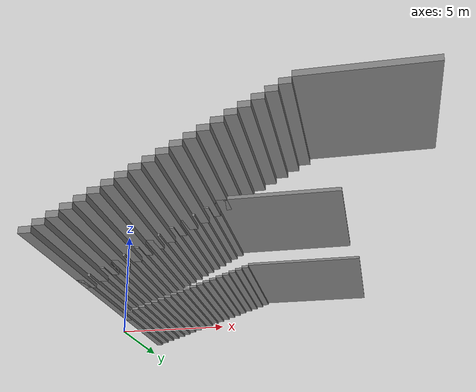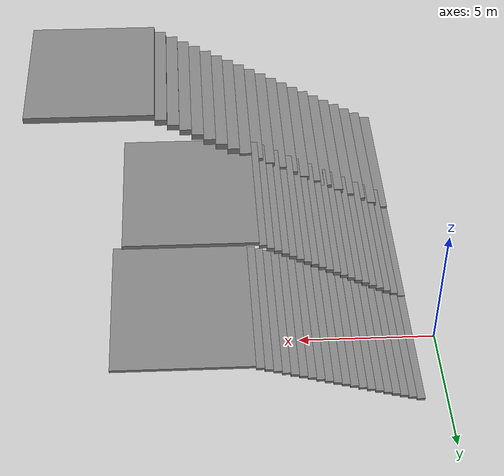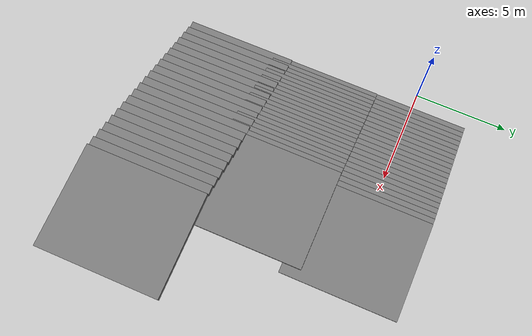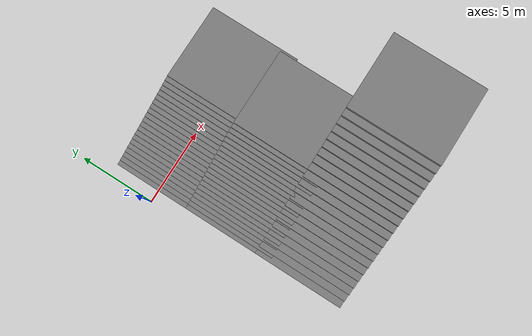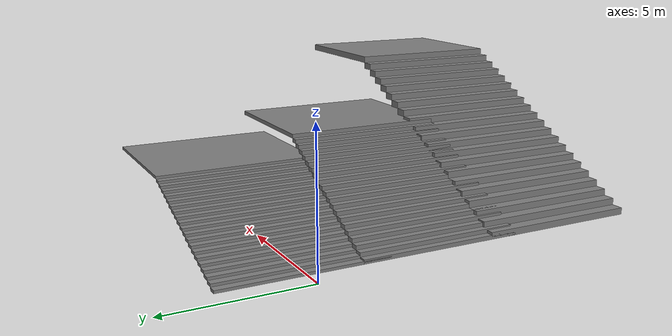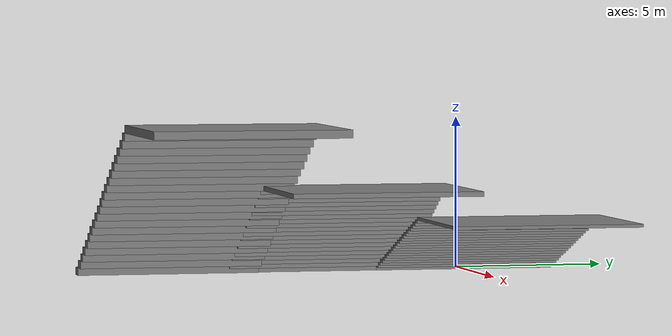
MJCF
<?xml version="1.0" encoding="UTF-8" ?>
<mujoco model="stair_terrain">
    <option gravity="0 0 -9.81" />

    <worldbody>

        <!-- stair 每级0.10m高, 0.30m深 -->
        <body name="staircase" pos="0.8 0 0">
            <geom name="s1_stair1" type="box" pos="0.15 0 0.05" size="0.15 3.0 0.05" rgba="0.5 0.5 0.5 1"/>
            <geom name="s1_stair2" type="box" pos="0.45 0 0.15" size="0.15 3.0 0.05" rgba="0.5 0.5 0.5 1"/>
            <geom name="s1_stair3" type="box" pos="0.75 0 0.25" size="0.15 3.0 0.05" rgba="0.5 0.5 0.5 1"/>
            <geom name="s1_stair4" type="box" pos="1.05 0 0.35" size="0.15 3.0 0.05" rgba="0.5 0.5 0.5 1"/>
            <geom name="s1_stair5" type="box" pos="1.35 0 0.45" size="0.15 3.0 0.05" rgba="0.5 0.5 0.5 1"/>
            <geom name="s1_stair6" type="box" pos="1.65 0 0.55" size="0.15 3.0 0.05" rgba="0.5 0.5 0.5 1"/>
            <geom name="s1_stair7" type="box" pos="1.95 0 0.65" size="0.15 3.0 0.05" rgba="0.5 0.5 0.5 1"/>
            <geom name="s1_stair8" type="box" pos="2.25 0 0.75" size="0.15 3.0 0.05" rgba="0.5 0.5 0.5 1"/>
            <geom name="s1_stair9" type="box" pos="2.55 0 0.85" size="0.15 3.0 0.05" rgba="0.5 0.5 0.5 1"/>
            <geom name="s1_stair10" type="box" pos="2.85 0 0.95" size="0.15 3.0 0.05" rgba="0.5 0.5 0.5 1"/>
            <geom name="s1_stair11" type="box" pos="3.15 0 1.05" size="0.15 3.0 0.05" rgba="0.5 0.5 0.5 1"/>
            <geom name="s1_stair12" type="box" pos="3.45 0 1.15" size="0.15 3.0 0.05" rgba="0.5 0.5 0.5 1"/>
            <geom name="s1_stair13" type="box" pos="3.75 0 1.25" size="0.15 3.0 0.05" rgba="0.5 0.5 0.5 1"/>
            <geom name="s1_stair14" type="box" pos="4.05 0 1.35" size="0.15 3.0 0.05" rgba="0.5 0.5 0.5 1"/>
            <geom name="s1_stair15" type="box" pos="4.35 0 1.45" size="0.15 3.0 0.05" rgba="0.5 0.5 0.5 1"/>
            <geom name="s1_stair16" type="box" pos="4.65 0 1.55" size="0.15 3.0 0.05" rgba="0.5 0.5 0.5 1"/>
            <geom name="s1_stair17" type="box" pos="4.95 0 1.65" size="0.15 3.0 0.05" rgba="0.5 0.5 0.5 1"/>
            <geom name="s1_stair18" type="box" pos="5.25 0 1.75" size="0.15 3.0 0.05" rgba="0.5 0.5 0.5 1"/>
            <geom name="s1_stair19" type="box" pos="5.55 0 1.85" size="0.15 3.0 0.05" rgba="0.5 0.5 0.5 1"/>
            <geom name="s1_stair20" type="box" pos="5.85 0 1.95" size="0.15 3.0 0.05" rgba="0.5 0.5 0.5 1"/>
            <geom name="s1_platform" type="box" pos="8.50 0 2.05" size="2.5 3.0 0.05" rgba="0.5 0.5 0.5 1"/>
        </body>

        <!-- stair 每级0.15m高, 0.28m深 -->
        <body name="staircase2" pos="0.8 -5.0 0">
            <geom name="s2_stair1" type="box" pos="0.14 0 0.075" size="0.14 3.0 0.075" rgba="0.5 0.5 0.5 1"/>
            <geom name="s2_stair2" type="box" pos="0.42 0 0.225" size="0.14 3.0 0.075" rgba="0.5 0.5 0.5 1"/>
            <geom name="s2_stair3" type="box" pos="0.70 0 0.375" size="0.14 3.0 0.075" rgba="0.5 0.5 0.5 1"/>
            <geom name="s2_stair4" type="box" pos="0.98 0 0.525" size="0.14 3.0 0.075" rgba="0.5 0.5 0.5 1"/>
            <geom name="s2_stair5" type="box" pos="1.26 0 0.675" size="0.14 3.0 0.075" rgba="0.5 0.5 0.5 1"/>
            <geom name="s2_stair6" type="box" pos="1.54 0 0.825" size="0.14 3.0 0.075" rgba="0.5 0.5 0.5 1"/>
            <geom name="s2_stair7" type="box" pos="1.82 0 0.975" size="0.14 3.0 0.075" rgba="0.5 0.5 0.5 1"/>
            <geom name="s2_stair8" type="box" pos="2.10 0 1.125" size="0.14 3.0 0.075" rgba="0.5 0.5 0.5 1"/>
            <geom name="s2_stair9" type="box" pos="2.38 0 1.275" size="0.14 3.0 0.075" rgba="0.5 0.5 0.5 1"/>
            <geom name="s2_stair10" type="box" pos="2.66 0 1.425" size="0.14 3.0 0.075" rgba="0.5 0.5 0.5 1"/>
            <geom name="s2_stair11" type="box" pos="2.94 0 1.575" size="0.14 3.0 0.075" rgba="0.5 0.5 0.5 1"/>
            <geom name="s2_stair12" type="box" pos="3.22 0 1.725" size="0.14 3.0 0.075" rgba="0.5 0.5 0.5 1"/>
            <geom name="s2_stair13" type="box" pos="3.50 0 1.875" size="0.14 3.0 0.075" rgba="0.5 0.5 0.5 1"/>
            <geom name="s2_stair14" type="box" pos="3.78 0 2.025" size="0.14 3.0 0.075" rgba="0.5 0.5 0.5 1"/>
            <geom name="s2_stair15" type="box" pos="4.06 0 2.175" size="0.14 3.0 0.075" rgba="0.5 0.5 0.5 1"/>
            <geom name="s2_stair16" type="box" pos="4.34 0 2.325" size="0.14 3.0 0.075" rgba="0.5 0.5 0.5 1"/>
            <geom name="s2_stair17" type="box" pos="4.62 0 2.475" size="0.14 3.0 0.075" rgba="0.5 0.5 0.5 1"/>
            <geom name="s2_stair18" type="box" pos="4.90 0 2.625" size="0.14 3.0 0.075" rgba="0.5 0.5 0.5 1"/>
            <geom name="s2_stair19" type="box" pos="5.18 0 2.775" size="0.14 3.0 0.075" rgba="0.5 0.5 0.5 1"/>
            <geom name="s2_stair20" type="box" pos="5.46 0 2.925" size="0.14 3.0 0.075" rgba="0.5 0.5 0.5 1"/>
            <geom name="s2_platform" type="box" pos="8.10 0 3.075" size="2.5 3.0 0.075" rgba="0.5 0.5 0.5 1"/>
        </body>

        <!-- stair 每级0.25m高, 0.4667m深 (高度/深度比 = 0.25/0.4667 ≈ 0.15/0.28, 与staircase2一致) -->
        <body name="staircase3" pos="0.8 -10.0 0">
            <geom name="s3_stair1" type="box" pos="0.2333 0 0.125" size="0.2333 3.0 0.125" rgba="0.5 0.5 0.5 1"/>
            <geom name="s3_stair2" type="box" pos="0.7000 0 0.375" size="0.2333 3.0 0.125" rgba="0.5 0.5 0.5 1"/>
            <geom name="s3_stair3" type="box" pos="1.1667 0 0.625" size="0.2333 3.0 0.125" rgba="0.5 0.5 0.5 1"/>
            <geom name="s3_stair4" type="box" pos="1.6333 0 0.875" size="0.2333 3.0 0.125" rgba="0.5 0.5 0.5 1"/>
            <geom name="s3_stair5" type="box" pos="2.1000 0 1.125" size="0.2333 3.0 0.125" rgba="0.5 0.5 0.5 1"/>
            <geom name="s3_stair6" type="box" pos="2.5667 0 1.375" size="0.2333 3.0 0.125" rgba="0.5 0.5 0.5 1"/>
            <geom name="s3_stair7" type="box" pos="3.0333 0 1.625" size="0.2333 3.0 0.125" rgba="0.5 0.5 0.5 1"/>
            <geom name="s3_stair8" type="box" pos="3.5000 0 1.875" size="0.2333 3.0 0.125" rgba="0.5 0.5 0.5 1"/>
            <geom name="s3_stair9" type="box" pos="3.9667 0 2.125" size="0.2333 3.0 0.125" rgba="0.5 0.5 0.5 1"/>
            <geom name="s3_stair10" type="box" pos="4.4333 0 2.375" size="0.2333 3.0 0.125" rgba="0.5 0.5 0.5 1"/>
            <geom name="s3_stair11" type="box" pos="4.9000 0 2.625" size="0.2333 3.0 0.125" rgba="0.5 0.5 0.5 1"/>
            <geom name="s3_stair12" type="box" pos="5.3667 0 2.875" size="0.2333 3.0 0.125" rgba="0.5 0.5 0.5 1"/>
            <geom name="s3_stair13" type="box" pos="5.8333 0 3.125" size="0.2333 3.0 0.125" rgba="0.5 0.5 0.5 1"/>
            <geom name="s3_stair14" type="box" pos="6.3000 0 3.375" size="0.2333 3.0 0.125" rgba="0.5 0.5 0.5 1"/>
            <geom name="s3_stair15" type="box" pos="6.7667 0 3.625" size="0.2333 3.0 0.125" rgba="0.5 0.5 0.5 1"/>
            <geom name="s3_stair16" type="box" pos="7.2333 0 3.875" size="0.2333 3.0 0.125" rgba="0.5 0.5 0.5 1"/>
            <geom name="s3_stair17" type="box" pos="7.7000 0 4.125" size="0.2333 3.0 0.125" rgba="0.5 0.5 0.5 1"/>
            <geom name="s3_stair18" type="box" pos="8.1667 0 4.375" size="0.2333 3.0 0.125" rgba="0.5 0.5 0.5 1"/>
            <geom name="s3_stair19" type="box" pos="8.6333 0 4.625" size="0.2333 3.0 0.125" rgba="0.5 0.5 0.5 1"/>
            <geom name="s3_stair20" type="box" pos="9.1000 0 4.875" size="0.2333 3.0 0.125" rgba="0.5 0.5 0.5 1"/>
            <geom name="s3_platform" type="box" pos="11.8333 0 5.125" size="2.5 3.0 0.125" rgba="0.5 0.5 0.5 1"/>
        </body>
    </worldbody>
</mujoco>
